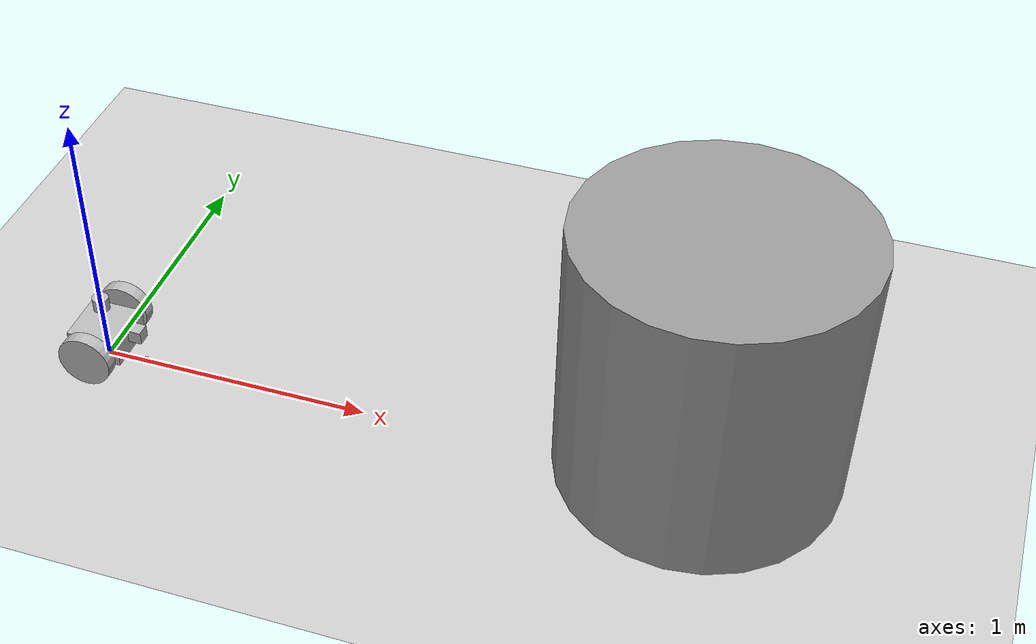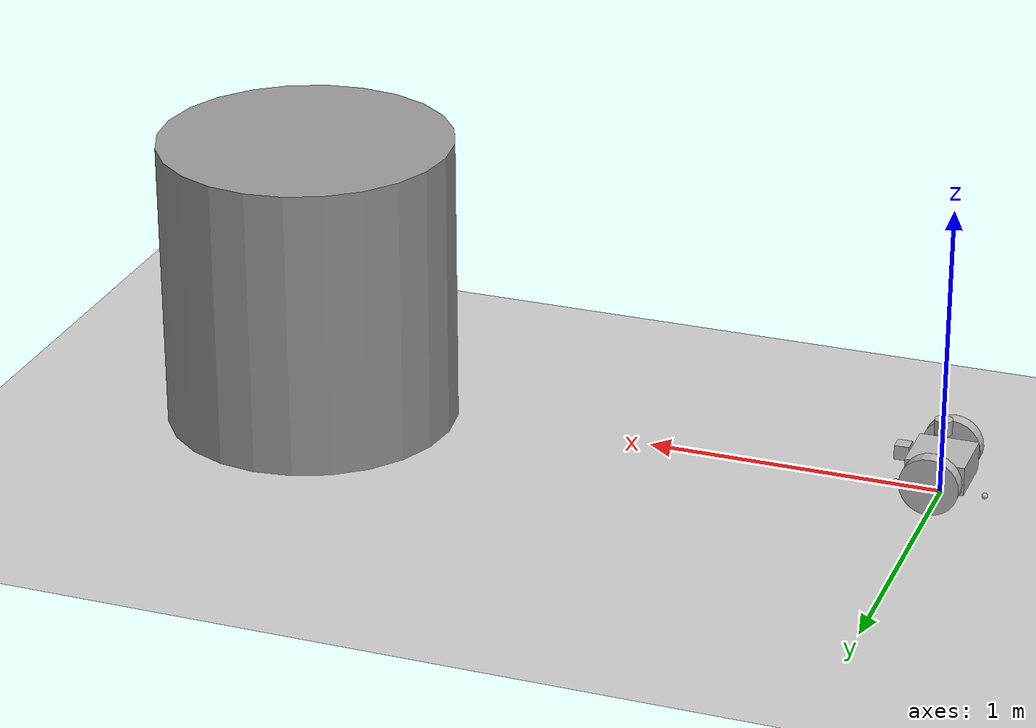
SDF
<sdf version="1.7">
 <world name="default">
  <scene><ambient>0.4 0.4 0.4 1</ambient><background>0.7 0.7 0.7 1</background><shadows>1</shadows></scene>
  <light name="sun" type="directional">
   <pose>0 0 10 0 -0 0</pose>
   <diffuse>0.8 0.8 0.8 1</diffuse>
   <specular>0.2 0.2 0.2 1</specular>
   <attenuation>
    <range>1000</range>
    <constant>0.9</constant>
    <linear>0.01</linear>
    <quadratic>0.001</quadratic>
   </attenuation>
   <direction>-0.5 0.1 -0.9</direction>
   <spot><inner_angle>0</inner_angle><outer_angle>0</outer_angle><falloff>0</falloff></spot>
  </light>
  <model name="ground_plane">
   <static>1</static>
   <link name="link">
    <collision name="collision">
     <geometry><plane><normal>0 0 1</normal><size>100 100</size></plane></geometry>
     <surface>
      <contact><collide_bitmask>65535</collide_bitmask></contact>
      <friction><ode><mu>100</mu><mu2>50</mu2></ode></friction>
     </surface>
    </collision>
    <visual name="visual">
     <cast_shadows>0</cast_shadows>
     <geometry><plane><normal>0 0 1</normal><size>100 100</size></plane></geometry>
     <material>
      <script><uri>file://media/materials/scripts/gazebo.material</uri><name>Gazebo/Grey</name></script>
     </material>
    </visual>
   </link>
  </model>
  <physics type="ode">
   <max_step_size>0.001</max_step_size>
   <real_time_factor>1</real_time_factor>
   <real_time_update_rate>1000</real_time_update_rate>
  </physics>
  <physics type="ode">
   <real_time_update_rate>1000</real_time_update_rate>
   <max_step_size>0.001</max_step_size>
   <real_time_factor>1</real_time_factor>
   <ode>
    <solver>
     <type>quick</type>
     <iters>150</iters>
     <precon_iters>0</precon_iters>
     <sor>1.4</sor>
     <use_dynamic_moi_rescaling>1</use_dynamic_moi_rescaling>
    </solver>
    <constraints>
     <cfm>1e-05</cfm>
     <erp>0.2</erp>
     <contact_max_correcting_vel>2000</contact_max_correcting_vel>
     <contact_surface_layer>0.01</contact_surface_layer>
    </constraints>
   </ode>
  </physics>
  <gravity>0 0 -9.81</gravity>
  <magnetic_field>6e-06 2.3e-05 -4.2e-05</magnetic_field>
  <atmosphere type="adiabatic"/>
  <spherical_coordinates>
   <surface_model>EARTH_WGS84</surface_model>
   <latitude_deg>0</latitude_deg>
   <longitude_deg>0</longitude_deg>
   <elevation>0</elevation>
   <heading_deg>0</heading_deg>
  </spherical_coordinates>
  <model name="robot">
   <link name="base_link">
    <inertial>
     <mass>10</mass>
     <inertia><ixx>0.5</ixx><ixy>0</ixy><ixz>0</ixz><iyy>0.5</iyy><iyz>0</iyz><izz>0.5</izz></inertia>
    </inertial>
    <collision name="base_link_fixed_joint_lump__caster_collision_collision">
     <pose>-0.15 0 -0.09 0 -0 0</pose>
     <geometry><sphere><radius>0.01</radius></sphere></geometry>
    </collision>
    <collision name="base_link_fixed_joint_lump__caster_collision2_collision_1">
     <pose>0.15 0 -0.09 0 -0 0</pose>
     <geometry><sphere><radius>0.01</radius></sphere></geometry>
    </collision>
    <collision name="base_link_collision_2"><geometry><box><size>0.2 0.2 0.1</size></box></geometry></collision>
    <visual name="base_link_fixed_joint_lump__caster_visual_visual">
     <pose>-0.15 0 -0.09 0 -0 0</pose>
     <geometry><sphere><radius>0.01</radius></sphere></geometry>
    </visual>
    <visual name="base_link_fixed_joint_lump__caster_visual2_visual_1">
     <pose>0.15 0 -0.09 0 -0 0</pose>
     <geometry><sphere><radius>0.01</radius></sphere></geometry>
    </visual>
    <visual name="base_link_fixed_joint_lump__base_visual_visual_2">
     <geometry><box><size>0.2 0.2 0.1</size></box></geometry>
    </visual>
    <visual name="base_link_fixed_joint_lump__camera_visual_visual_3">
     <pose>0.13 0 0.03 0 -0 0</pose>
     <geometry><box><size>0.05 0.05 0.05</size></box></geometry>
    </visual>
    <visual name="base_link_fixed_joint_lump__lidar_visual_visual_4">
     <pose>0 0 0.14 0 -0 1.57</pose>
     <geometry><cylinder><length>0.05</length><radius>0.03</radius></cylinder></geometry>
    </visual>
    <sensor name="camera1" type="camera">
     <update_rate>30</update_rate>
     <camera name="head">
      <horizontal_fov>1.5</horizontal_fov>
      <image><width>960</width><height>840</height><format>R8G8B8</format></image>
      <clip><near>0.02</near><far>300</far></clip>
     </camera>
     <plugin name="camera_controller" filename="libgazebo_ros_camera.so">
      <alwaysOn>1</alwaysOn>
      <updateRate>30.0</updateRate>
      <cameraName>diff_drive_robot/camera1</cameraName>
      <imageTopicName>image_raw</imageTopicName>
      <cameraInfoTopicName>camera_info</cameraInfoTopicName>
      <frameName>camera</frameName>
      <hackBaseline>0.07</hackBaseline>
      <distortionK1>0.0</distortionK1>
      <distortionK2>0.0</distortionK2>
      <distortionK3>0.0</distortionK3>
      <distortionT1>0.0</distortionT1>
      <distortionT2>0.0</distortionT2>
      <robotNamespace>/</robotNamespace>
     </plugin>
     <pose>0.13 0 0.03 0 -0 0</pose>
    </sensor>
    <sensor name="lidar_sensor" type="ray">
     <visualize>0</visualize>
     <update_rate>30</update_rate>
     <ray>
      <scan>
       <horizontal>
        <samples>5</samples>
        <resolution>1</resolution>
        <min_angle>-3.1416</min_angle>
        <max_angle>3.1416</max_angle>
       </horizontal>
       <vertical><samples>1</samples><min_angle>0</min_angle><max_angle>0</max_angle></vertical>
      </scan>
      <range><min>0.4</min><max>10</max><resolution>0.01</resolution></range>
      <noise><type>gaussian</type><mean>0</mean><stddev>0.01</stddev></noise>
     </ray>
     <plugin name="gazebo_ros_head_lidar_controller" filename="libgazebo_ros_laser.so">
      <topicName>scan</topicName>
      <frameName>lidar_link</frameName>
      <robotNamespace>/</robotNamespace>
     </plugin>
     <pose>0 0 0.14 0 -0 1.57</pose>
    </sensor>
   </link>
   <joint name="left_wheel_joint" type="revolute">
    <pose relative_to="base_link">0 0.15 0 1.57 -0 0</pose>
    <parent>base_link</parent>
    <child>wheel_left</child>
    <axis>
     <xyz>0 0 -1</xyz>
     <limit><effort>10</effort><velocity>10</velocity><lower>-1e+16</lower><upper>1e+16</upper></limit>
     <dynamics><spring_reference>0</spring_reference><spring_stiffness>0</spring_stiffness></dynamics>
    </axis>
   </joint>
   <link name="wheel_left">
    <pose relative_to="left_wheel_joint">0 0 0 0 -0 0</pose>
    <inertial>
     <mass>1</mass>
     <inertia><ixx>0.1</ixx><ixy>0</ixy><ixz>0</ixz><iyy>0.1</iyy><iyz>0</iyz><izz>0.1</izz></inertia>
    </inertial>
    <collision name="wheel_left_collision">
     <geometry><cylinder><length>0.05</length><radius>0.1</radius></cylinder></geometry>
    </collision>
    <visual name="wheel_left_visual_visual">
     <geometry><cylinder><length>0.05</length><radius>0.1</radius></cylinder></geometry>
    </visual>
   </link>
   <joint name="right_wheel_joint" type="revolute">
    <pose relative_to="base_link">0 -0.15 0 1.57 -0 0</pose>
    <parent>base_link</parent>
    <child>wheel_right</child>
    <axis>
     <xyz>0 0 -1</xyz>
     <limit><effort>10</effort><velocity>10</velocity><lower>-1e+16</lower><upper>1e+16</upper></limit>
     <dynamics><spring_reference>0</spring_reference><spring_stiffness>0</spring_stiffness></dynamics>
    </axis>
   </joint>
   <link name="wheel_right">
    <pose relative_to="right_wheel_joint">0 0 0 0 -0 0</pose>
    <inertial>
     <mass>1</mass>
     <inertia><ixx>0.1</ixx><ixy>0</ixy><ixz>0</ixz><iyy>0.1</iyy><iyz>0</iyz><izz>0.1</izz></inertia>
    </inertial>
    <collision name="wheel_right_collision">
     <geometry><cylinder><length>0.05</length><radius>0.1</radius></cylinder></geometry>
    </collision>
    <visual name="wheel_right_fixed_joint_lump__wheel_left_visual_visual">
     <geometry><cylinder><length>0.05</length><radius>0.1</radius></cylinder></geometry>
    </visual>
   </link>
   <static>0</static>
   <plugin name="differential_drive_controller" filename="libgazebo_ros_diff_drive.so">
    <legacyMode>0</legacyMode>
    <alwaysOn>1</alwaysOn>
    <updateRate>30</updateRate>
    <leftJoint>left_wheel_joint</leftJoint>
    <rightJoint>right_wheel_joint</rightJoint>
    <wheelSeparation>0.3</wheelSeparation>
    <wheelDiameter>0.21</wheelDiameter>
    <wheelTorque>20</wheelTorque>
    <commandTopic>cmd_vel</commandTopic>
    <odometryTopic>/diff_drive_robot/odom</odometryTopic>
    <odometryFrame>odom</odometryFrame>
    <robotBaseFrame>base_link</robotBaseFrame>
    <robotNamespace>/</robotNamespace>
   </plugin>
   <pose>-1e-06 1.8e-05 0.100017 5e-06 -4.2e-05 1.8e-05</pose>
  </model>
  <model name="unit_cylinder">
   <pose>2.1767 0.137174 0.499997 -4e-06 -4e-06 -0</pose>
   <link name="link">
    <inertial>
     <mass>1</mass>
     <inertia><ixx>0.145833</ixx><ixy>0</ixy><ixz>0</ixz><iyy>0.145833</iyy><iyz>0</iyz><izz>0.125</izz></inertia>
    </inertial>
    <collision name="collision">
     <geometry><cylinder><radius>0.5</radius><length>1</length></cylinder></geometry>
    </collision>
    <visual name="visual">
     <geometry><cylinder><radius>0.5</radius><length>1</length></cylinder></geometry>
     <material>
      <script><name>Gazebo/Grey</name><uri>file://media/materials/scripts/gazebo.material</uri></script>
     </material>
    </visual>
   </link>
  </model>
 </world>
</sdf>
